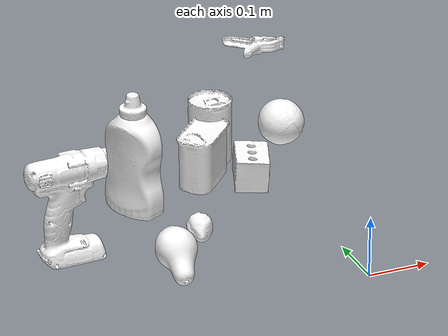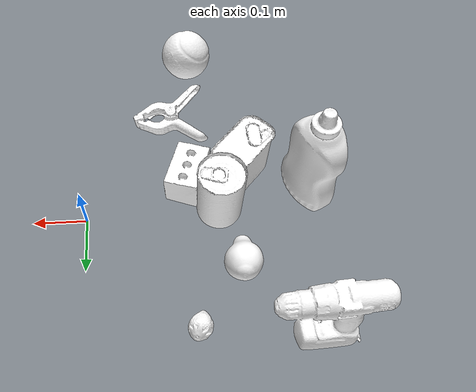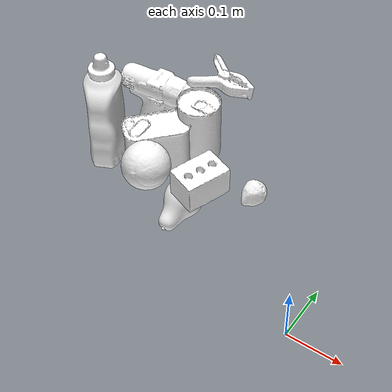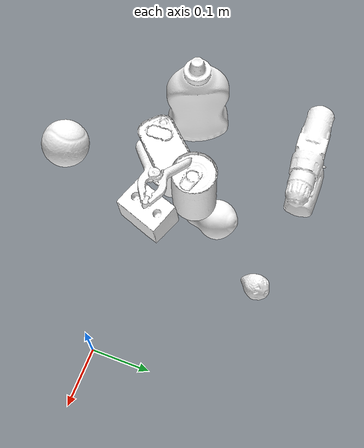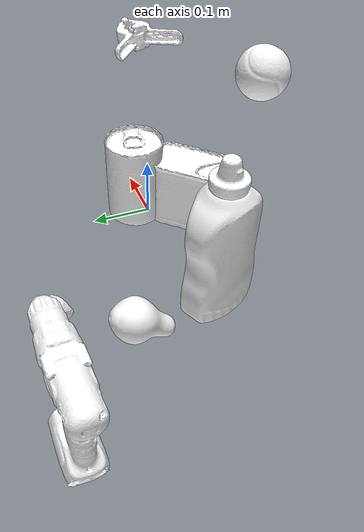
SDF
<sdf version="1.6">
 <world name="default">
  <gravity>0 0 -9.8</gravity>
  <model name="YcbMustardBottle">
   <pose>-0.37615 0.03794 0.25 0 0 1.9390639</pose>
   <link name="baselink">
    <contact>
     <lateral_friction>0.8</lateral_friction>
     <spinning_friction>0.001</spinning_friction>
     <rolling_friction>0.001</rolling_friction>
     <contact_cfm>0.0</contact_cfm>
     <contact_erp>1.0</contact_erp>
    </contact>
    <inertial>
     <pose>0.005 -0.005 -0.015 0 0 0.1</pose>
     <mass>0.603</mass>
     <inertia><ixx>1e-3</ixx><ixy>0</ixy><ixz>0</ixz><iyy>1e-3</iyy><iyz>0</iyz><izz>1e-3</izz></inertia>
    </inertial>
    <visual name="visual">
     <geometry>
      <mesh><scale>1 1 1</scale><uri>../ycb_objects/YcbMustardBottle/textured_simple_reoriented.obj</uri></mesh>
     </geometry>
     <material>
      <ambient>1 1 1 1</ambient>
      <diffuse>1.00000 1.00000 1.000000 1</diffuse>
      <specular>.5 .5 .5 1</specular>
      <emissive>0 0 0 0</emissive>
     </material>
    </visual>
    <collision name="collision">
     <geometry>
      <mesh><scale>1 1 1</scale><uri>../ycb_objects/YcbMustardBottle/collision_vhacd.obj</uri></mesh>
     </geometry>
    </collision>
   </link>
  </model>
  <model name="YcbPottedMeatCan">
   <pose>-0.27615 0.03794 0.25 0 0 -1.7217114</pose>
   <link name="baselink">
    <contact>
     <lateral_friction>0.6</lateral_friction>
     <rolling_friction>0.0</rolling_friction>
     <contact_cfm>0.0</contact_cfm>
     <contact_erp>1.0</contact_erp>
    </contact>
    <inertial>
     <pose>0 0.012 -0.01 0 0 -0.5</pose>
     <mass>0.370</mass>
     <inertia><ixx>1e-3</ixx><ixy>0</ixy><ixz>0</ixz><iyy>1e-3</iyy><iyz>0</iyz><izz>1e-3</izz></inertia>
    </inertial>
    <visual name="visual">
     <geometry>
      <mesh><scale>1 1 1</scale><uri>../ycb_objects/YcbPottedMeatCan/textured_simple_reoriented.obj</uri></mesh>
     </geometry>
     <material>
      <ambient>1 1 1 1</ambient>
      <diffuse>1.00000 1.00000 1.000000 1</diffuse>
      <specular>.5 .5 .5 1</specular>
      <emissive>0 0 0 0</emissive>
     </material>
    </visual>
    <collision name="collision">
     <geometry>
      <mesh><scale>1 1 1</scale><uri>../ycb_objects/YcbPottedMeatCan/collision_vhacd.obj</uri></mesh>
     </geometry>
    </collision>
   </link>
  </model>
  <model name="YcbTomatoSoupCan">
   <pose>-0.2361526 0.09094 0.26 0 0 -0.5236056</pose>
   <link name="baselink">
    <contact>
     <lateral_friction>0.6</lateral_friction>
     <rolling_friction>0.001</rolling_friction>
     <spinning_friction>0.001</spinning_friction>
     <contact_cfm>0.0</contact_cfm>
     <contact_erp>1.0</contact_erp>
    </contact>
    <inertial>
     <pose>0 0.0 -0.02 0.0 0.0 0.0</pose>
     <mass>0.349</mass>
     <inertia><ixx>1e-3</ixx><ixy>0</ixy><ixz>0</ixz><iyy>1e-3</iyy><iyz>0</iyz><izz>1e-3</izz></inertia>
    </inertial>
    <visual name="visual">
     <geometry>
      <mesh><scale>1 1 1</scale><uri>../ycb_objects/YcbTomatoSoupCan/textured_simple_reoriented.obj</uri></mesh>
     </geometry>
     <material>
      <ambient>1 1 1 1</ambient>
      <diffuse>1.00000 1.00000 1.000000 1</diffuse>
      <specular>.5 .5 .5 1</specular>
      <emissive>0 0 0 0</emissive>
     </material>
    </visual>
    <collision name="collision">
     <geometry>
      <mesh><scale>1 1 1</scale><uri>../ycb_objects/YcbTomatoSoupCan/collision_vhacd.obj</uri></mesh>
     </geometry>
    </collision>
   </link>
  </model>
  <model name="YcbTennisBall">
   <pose>-0.18479 -0.08116 0.3 0 0 1.9444334</pose>
   <link name="baselink">
    <contact>
     <lateral_friction>0.8</lateral_friction>
     <rolling_friction>0.001</rolling_friction>
     <spinning_friction>0.001</spinning_friction>
     <contact_cfm>0.0</contact_cfm>
     <contact_erp>1.0</contact_erp>
    </contact>
    <inertial>
     <pose>0.0 0.005 0.03 0.0 0.0 0.0</pose>
     <mass>0.058</mass>
     <inertia><ixx>1e-3</ixx><ixy>0</ixy><ixz>0</ixz><iyy>1e-3</iyy><iyz>0</iyz><izz>1e-3</izz></inertia>
    </inertial>
    <visual name="visual">
     <geometry>
      <mesh><scale>1 1 1</scale><uri>../ycb_objects/YcbTennisBall/textured_reoriented.obj</uri></mesh>
     </geometry>
     <material>
      <ambient>1 1 1 1</ambient>
      <diffuse>1.00000 1.00000 1.000000 1</diffuse>
      <specular>.5 .5 .5 1</specular>
      <emissive>0 0 0 0</emissive>
     </material>
    </visual>
    <collision name="collision">
     <geometry>
      <mesh><scale>1 1 1</scale><uri>../ycb_objects/YcbTennisBall/collision_vhacd.obj</uri></mesh>
     </geometry>
    </collision>
   </link>
  </model>
  <model name="YcbStrawberry">
   <pose>-0.1961526 0.21094 0. 0 0 -0.5236056</pose>
   <link name="baselink">
    <contact>
     <lateral_friction>0.5</lateral_friction>
     <rolling_friction>0.001</rolling_friction>
     <spinning_friction>0.001</spinning_friction>
     <contact_cfm>0.0</contact_cfm>
     <contact_erp>1.0</contact_erp>
    </contact>
    <inertial>
     <pose>-0.005 0.005 0.02 0.0 0.0 0.0</pose>
     <mass>0.018</mass>
     <inertia><ixx>1e-3</ixx><ixy>0</ixy><ixz>0</ixz><iyy>1e-3</iyy><iyz>0</iyz><izz>1e-3</izz></inertia>
    </inertial>
    <visual name="visual">
     <geometry>
      <mesh><scale>1 1 1</scale><uri>../ycb_objects/YcbStrawberry/textured_reoriented.obj</uri></mesh>
     </geometry>
     <material>
      <ambient>1 1 1 1</ambient>
      <diffuse>1.00000 1.00000 1.000000 1</diffuse>
      <specular>.5 .5 .5 1</specular>
      <emissive>0 0 0 0</emissive>
     </material>
    </visual>
    <collision name="collision">
     <geometry>
      <mesh><scale>1 1 1</scale><uri>../ycb_objects/YcbStrawberry/collision_vhacd.obj</uri></mesh>
     </geometry>
    </collision>
   </link>
  </model>
  <model name="YcbPear">
   <pose>-0.2761526 0.12794 0.0 0.5355226 0 0</pose>
   <link name="baselink">
    <contact>
     <lateral_friction>0.6</lateral_friction>
     <rolling_friction>0.001</rolling_friction>
     <spinning_friction>0.001</spinning_friction>
     <contact_cfm>0.0</contact_cfm>
     <contact_erp>1.0</contact_erp>
    </contact>
    <inertial>
     <pose>0 0.005 0.04 0.0 0.0 0.0</pose>
     <mass>0.049</mass>
     <inertia><ixx>1e-3</ixx><ixy>0</ixy><ixz>0</ixz><iyy>1e-3</iyy><iyz>0</iyz><izz>1e-3</izz></inertia>
    </inertial>
    <visual name="visual">
     <geometry>
      <mesh><scale>1 1 1</scale><uri>../ycb_objects/YcbPear/textured_reoriented.obj</uri></mesh>
     </geometry>
     <material>
      <ambient>1 1 1 1</ambient>
      <diffuse>1.00000 1.00000 1.000000 1</diffuse>
      <specular>.5 .5 .5 1</specular>
      <emissive>0 0 0 0</emissive>
     </material>
    </visual>
    <collision name="collision">
     <geometry><mesh><scale>1 1 1</scale><uri>../ycb_objects/YcbPear/collision_vhacd.obj</uri></mesh></geometry>
    </collision>
   </link>
  </model>
  <model name="YcbPowerDrill">
   <pose>-0.41456 0.21899 0. 0 0 -0.5236056</pose>
   <link name="baselink">
    <contact>
     <lateral_friction>0.9</lateral_friction>
     <rolling_friction>0.001</rolling_friction>
     <spinning_friction>0.001</spinning_friction>
     <contact_cfm>0.0</contact_cfm>
     <contact_erp>1.0</contact_erp>
    </contact>
    <inertial>
     <pose>-0.005 0.01 0.06 0 0 0.6</pose>
     <mass>0.895</mass>
     <inertia><ixx>1e-3</ixx><ixy>0</ixy><ixz>0</ixz><iyy>1e-3</iyy><iyz>0</iyz><izz>1e-3</izz></inertia>
    </inertial>
    <visual name="visual">
     <geometry>
      <mesh><scale>1 1 1</scale><uri>../ycb_objects/YcbPowerDrill/textured_simple_reoriented.obj</uri></mesh>
     </geometry>
     <material>
      <ambient>1 1 1 1</ambient>
      <diffuse>1.00000 1.00000 1.000000 1</diffuse>
      <specular>.5 .5 .5 1</specular>
      <emissive>0 0 0 0</emissive>
     </material>
    </visual>
    <collision name="collision">
     <geometry>
      <mesh><scale>1 1 1</scale><uri>../ycb_objects/YcbPowerDrill/collision_vhacd.obj</uri></mesh>
     </geometry>
    </collision>
   </link>
  </model>
  <model name="YcbMediumClamp">
   <pose>-0.16615 0.05794 0.35 0 0 0</pose>
   <link name="baselink">
    <contact>
     <lateral_friction>0.6</lateral_friction>
     <rolling_friction>0.001</rolling_friction>
     <spinning_friction>0.001</spinning_friction>
     <contact_cfm>0.0</contact_cfm>
     <contact_erp>1.0</contact_erp>
    </contact>
    <inertial>
     <pose>0.02 0.009 0.04 -0.1 0 0.0</pose>
     <mass>0.059</mass>
     <inertia><ixx>1e-3</ixx><ixy>0</ixy><ixz>0</ixz><iyy>1e-3</iyy><iyz>0</iyz><izz>1e-3</izz></inertia>
    </inertial>
    <visual name="visual">
     <geometry>
      <mesh><scale>1 1 1</scale><uri>../ycb_objects/YcbMediumClamp/textured_reoriented.obj</uri></mesh>
     </geometry>
     <material>
      <ambient>1 1 1 1</ambient>
      <diffuse>1.00000 1.00000 1.000000 1</diffuse>
      <specular>.5 .5 .5 1</specular>
      <emissive>0 0 0 0</emissive>
     </material>
    </visual>
    <collision name="collision">
     <geometry>
      <mesh><scale>1 1 1</scale><uri>../ycb_objects/YcbMediumClamp/collision_vhacd.obj</uri></mesh>
     </geometry>
    </collision>
   </link>
  </model>
  <model name="YcbFoamBrick">
   <pose>-0.17615 0.03794 0.20 0 0 0</pose>
   <link name="baselink">
    <contact>
     <lateral_friction>0.5</lateral_friction>
     <rolling_friction>0.0</rolling_friction>
     <contact_cfm>0.0</contact_cfm>
     <contact_erp>1.0</contact_erp>
    </contact>
    <inertial>
     <pose>-0.013 -0.005 -0.0 0 0 -0.35</pose>
     <mass>0.028</mass>
     <inertia><ixx>1e-3</ixx><ixy>0</ixy><ixz>0</ixz><iyy>1e-3</iyy><iyz>0</iyz><izz>1e-3</izz></inertia>
    </inertial>
    <visual name="visual">
     <geometry>
      <mesh><scale>1 1 1</scale><uri>../ycb_objects/YcbFoamBrick/textured_simple_reoriented.obj</uri></mesh>
     </geometry>
     <material>
      <ambient>1 1 1 1</ambient>
      <diffuse>1.00000 1.00000 1.000000 1</diffuse>
      <specular>.5 .5 .5 1</specular>
      <emissive>0 0 0 0</emissive>
     </material>
    </visual>
    <collision name="collision">
     <geometry>
      <mesh><scale>1 1 1</scale><uri>../ycb_objects/YcbFoamBrick/collision_vhacd.obj</uri></mesh>
     </geometry>
    </collision>
   </link>
  </model>
 </world>
</sdf>
